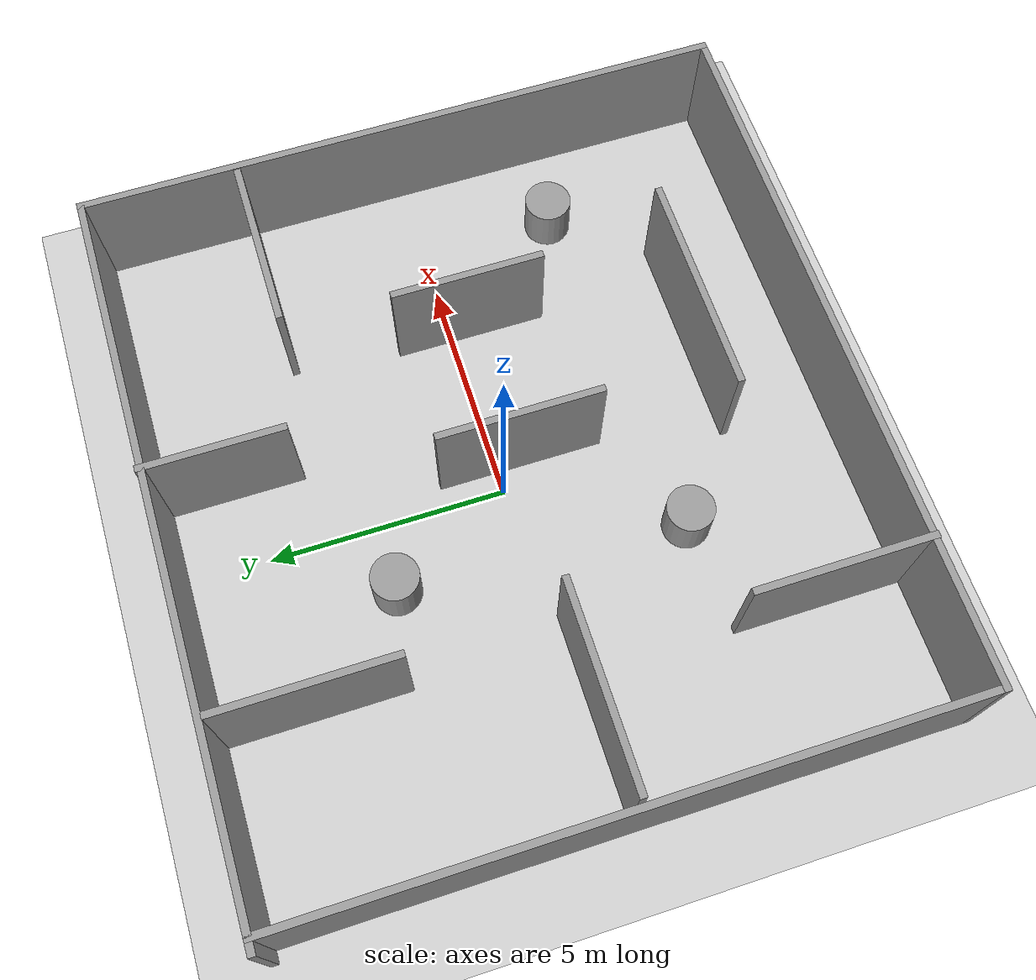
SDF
<sdf version="1.7">
 <world name="default">
  <light name="sun" type="directional">
   <pose>0 0 10 0 -0 0</pose>
   <diffuse>0.8 0.8 0.8 1</diffuse>
   <specular>0.2 0.2 0.2 1</specular>
   <attenuation>
    <range>1000</range>
    <constant>0.9</constant>
    <linear>0.01</linear>
    <quadratic>0.001</quadratic>
   </attenuation>
   <direction>-0.5 0.1 -0.9</direction>
   <spot><inner_angle>0</inner_angle><outer_angle>0</outer_angle><falloff>0</falloff></spot>
  </light>
  <model name="ground_plane">
   <static>1</static>
   <link name="link">
    <collision name="collision">
     <geometry><plane><normal>0 0 1</normal><size>100 100</size></plane></geometry>
     <surface>
      <contact><collide_bitmask>65535</collide_bitmask></contact>
      <friction><ode><mu>100</mu><mu2>50</mu2></ode></friction>
     </surface>
    </collision>
    <visual name="visual">
     <cast_shadows>0</cast_shadows>
     <geometry><plane><normal>0 0 1</normal><size>100 100</size></plane></geometry>
     <material>
      <script><uri>file://media/materials/scripts/gazebo.material</uri><name>Gazebo/Grey</name></script>
     </material>
    </visual>
   </link>
  </model>
  <gravity>0 0 -9.8</gravity>
  <magnetic_field>6e-06 2.3e-05 -4.2e-05</magnetic_field>
  <atmosphere type="adiabatic"/>
  <physics type="ode">
   <max_step_size>0.001</max_step_size>
   <real_time_factor>1</real_time_factor>
   <real_time_update_rate>1000</real_time_update_rate>
  </physics>
  <scene><ambient>0.4 0.4 0.4 1</ambient><background>0.7 0.7 0.7 1</background><shadows>1</shadows></scene>
  <spherical_coordinates>
   <surface_model>EARTH_WGS84</surface_model>
   <latitude_deg>0</latitude_deg>
   <longitude_deg>0</longitude_deg>
   <elevation>0</elevation>
   <heading_deg>0</heading_deg>
  </spherical_coordinates>
  <model name="maze_house">
   <pose>0.16752 -0.157789 0 0 -0 0</pose>
   <link name="Wall_23">
    <collision name="Wall_23_Collision">
     <geometry><box><size>3.75 0.15 2.5</size></box></geometry>
     <pose>0 0 1.25 0 -0 0</pose>
    </collision>
    <visual name="Wall_23_Visual">
     <pose>0 0 1.25 0 -0 0</pose>
     <geometry><box><size>3.75 0.15 2.5</size></box></geometry>
     <material>
      <script><uri>file://media/materials/scripts/gazebo.material</uri><name>Gazebo/Grey</name></script>
      <ambient>1 1 1 1</ambient>
     </material>
     <meta><layer>0</layer></meta>
    </visual>
    <pose>-4.39045 -5.15967 0 0 -0 1.5708</pose>
   </link>
   <link name="Wall_27">
    <collision name="Wall_27_Collision">
     <geometry><box><size>4.75 0.15 2.5</size></box></geometry>
     <pose>0 0 1.25 0 -0 0</pose>
    </collision>
    <visual name="Wall_27_Visual">
     <pose>0 0 1.25 0 -0 0</pose>
     <geometry><box><size>4.75 0.15 2.5</size></box></geometry>
     <material>
      <script><uri>file://media/materials/scripts/gazebo.material</uri><name>Gazebo/Grey</name></script>
      <ambient>1 1 1 1</ambient>
     </material>
     <meta><layer>0</layer></meta>
    </visual>
    <pose>2.07306 -4.69287 0 0 -0 0</pose>
   </link>
   <link name="Wall_29">
    <collision name="Wall_29_Collision">
     <geometry><box><size>3.25 0.15 2.5</size></box></geometry>
     <pose>0 0 1.25 0 -0 0</pose>
    </collision>
    <visual name="Wall_29_Visual">
     <pose>0 0 1.25 0 -0 0</pose>
     <geometry><box><size>3.25 0.15 2.5</size></box></geometry>
     <material>
      <script><uri>file://media/materials/scripts/gazebo.material</uri><name>Gazebo/Grey</name></script>
      <ambient>1 1 1 1</ambient>
     </material>
     <meta><layer>0</layer></meta>
    </visual>
    <pose>3.659 -0.275171 0 0 -0 -1.5708</pose>
   </link>
   <link name="Wall_35">
    <collision name="Wall_35_Collision">
     <geometry><box><size>3.5 0.15 2.5</size></box></geometry>
     <pose>0 0 1.25 0 -0 0</pose>
    </collision>
    <visual name="Wall_35_Visual">
     <pose>0 0 1.25 0 -0 0</pose>
     <geometry><box><size>3.5 0.15 2.5</size></box></geometry>
     <material>
      <script><uri>file://media/materials/scripts/gazebo.material</uri><name>Gazebo/Grey</name></script>
      <ambient>1 1 1 1</ambient>
     </material>
     <meta><layer>0</layer></meta>
    </visual>
    <pose>0.374451 -0.35391 0 0 -0 -1.5708</pose>
   </link>
   <link name="Wall_37">
    <collision name="Wall_37_Collision">
     <geometry><box><size>4.25 0.15 2.5</size></box></geometry>
     <pose>0 0 1.25 0 -0 0</pose>
    </collision>
    <visual name="Wall_37_Visual">
     <pose>0 0 1.25 0 -0 0</pose>
     <geometry><box><size>4.25 0.15 2.5</size></box></geometry>
     <material>
      <script><uri>file://media/materials/scripts/gazebo.material</uri><name>Gazebo/Grey</name></script>
      <ambient>1 1 1 1</ambient>
     </material>
     <meta><layer>0</layer></meta>
    </visual>
    <pose>-5.16239 -0.113008 0 0 -0 0</pose>
   </link>
   <link name="Wall_4">
    <collision name="Wall_4_Collision">
     <geometry><box><size>15.5 0.15 2.5</size></box></geometry>
     <pose>0 0 1.25 0 -0 0</pose>
    </collision>
    <visual name="Wall_4_Visual">
     <pose>0 0 1.25 0 -0 0</pose>
     <geometry><box><size>15.5 0.15 2.5</size></box></geometry>
     <material>
      <script><uri>file://media/materials/scripts/gazebo.material</uri><name>Gazebo/Grey</name></script>
      <ambient>1 1 1 1</ambient>
     </material>
     <meta><layer>0</layer></meta>
    </visual>
    <pose>-0 6.9187 0 0 -0 0</pose>
   </link>
   <link name="Wall_41">
    <collision name="Wall_41_Collision">
     <geometry><box><size>3.75 0.15 2.5</size></box></geometry>
     <pose>0 0 1.25 0 -0 0</pose>
    </collision>
    <visual name="Wall_41_Visual">
     <pose>0 0 1.25 0 -0 0</pose>
     <geometry><box><size>3.75 0.15 2.5</size></box></geometry>
     <material>
      <script><uri>file://media/materials/scripts/gazebo.material</uri><name>Gazebo/Grey</name></script>
      <ambient>1 1 1 1</ambient>
     </material>
     <meta><layer>0</layer></meta>
    </visual>
    <pose>-3.56521 4.98207 0 0 -0 -1.5708</pose>
   </link>
   <link name="Wall_43">
    <collision name="Wall_43_Collision">
     <geometry><box><size>3 0.15 2.5</size></box></geometry>
     <pose>0 0 1.25 0 -0 0</pose>
    </collision>
    <visual name="Wall_43_Visual">
     <pose>0 0 1.25 0 -0 0</pose>
     <geometry><box><size>3 0.15 2.5</size></box></geometry>
     <material>
      <script><uri>file://media/materials/scripts/gazebo.material</uri><name>Gazebo/Grey</name></script>
      <ambient>1 1 1 1</ambient>
     </material>
     <meta><layer>0</layer></meta>
    </visual>
    <pose>1.46052 5.53467 0 0 -0 -1.5708</pose>
   </link>
   <link name="Wall_45">
    <collision name="Wall_45_Collision">
     <geometry><box><size>3.75 0.15 2.5</size></box></geometry>
     <pose>0 0 1.25 0 -0 0</pose>
    </collision>
    <visual name="Wall_45_Visual">
     <pose>0 0 1.25 0 -0 0</pose>
     <geometry><box><size>3.75 0.15 2.5</size></box></geometry>
     <material>
      <script><uri>file://media/materials/scripts/gazebo.material</uri><name>Gazebo/Grey</name></script>
      <ambient>1 1 1 1</ambient>
     </material>
     <meta><layer>0</layer></meta>
    </visual>
    <pose>5.70774 3.60804 0 0 -0 0</pose>
   </link>
   <link name="Wall_5">
    <collision name="Wall_5_Collision">
     <geometry><box><size>14 0.15 2.5</size></box></geometry>
     <pose>0 0 1.25 0 -0 0</pose>
    </collision>
    <visual name="Wall_5_Visual">
     <pose>0 0 1.25 0 -0 0</pose>
     <geometry><box><size>14 0.15 2.5</size></box></geometry>
     <material>
      <script><uri>file://media/materials/scripts/gazebo.material</uri><name>Gazebo/Grey</name></script>
      <ambient>1 1 1 1</ambient>
     </material>
     <meta><layer>0</layer></meta>
    </visual>
    <pose>7.675 -0.006303 0 0 -0 -1.5708</pose>
   </link>
   <link name="Wall_6">
    <collision name="Wall_6_Collision">
     <geometry><box><size>15.25 0.15 2.5</size></box></geometry>
     <pose>0 0 1.25 0 -0 0</pose>
    </collision>
    <visual name="Wall_6_Visual">
     <pose>0 0 1.25 0 -0 0</pose>
     <geometry><box><size>15.25 0.15 2.5</size></box></geometry>
     <material>
      <script><uri>file://media/materials/scripts/gazebo.material</uri><name>Gazebo/Grey</name></script>
      <ambient>1 1 1 1</ambient>
     </material>
     <meta><layer>0</layer></meta>
    </visual>
    <pose>0.125 -6.9313 0 0 -0 3.14159</pose>
   </link>
   <link name="Wall_7">
    <collision name="Wall_7_Collision">
     <geometry><box><size>14 0.15 2.5</size></box></geometry>
     <pose>0 0 1.25 0 -0 0</pose>
    </collision>
    <visual name="Wall_7_Visual">
     <pose>0 0 1.25 0 -0 0</pose>
     <geometry><box><size>14 0.15 2.5</size></box></geometry>
     <material>
      <script><uri>file://media/materials/scripts/gazebo.material</uri><name>Gazebo/Grey</name></script>
      <ambient>1 1 1 1</ambient>
     </material>
     <meta><layer>0</layer></meta>
    </visual>
    <pose>-7.425 -0.006303 0 0 -0 1.5708</pose>
   </link>
   <static>1</static>
  </model>
  <model name="unit_cylinder">
   <pose>-1.83542 -3.33857 0.499992 -3e-06 4e-06 0</pose>
   <link name="link">
    <inertial>
     <mass>1</mass>
     <inertia><ixx>0.145833</ixx><ixy>0</ixy><ixz>0</ixz><iyy>0.145833</iyy><iyz>0</iyz><izz>0.125</izz></inertia>
    </inertial>
    <collision name="collision">
     <geometry><cylinder><radius>0.5</radius><length>1</length></cylinder></geometry>
    </collision>
    <visual name="visual">
     <geometry><cylinder><radius>0.5</radius><length>1</length></cylinder></geometry>
     <material>
      <script><name>Gazebo/Grey</name><uri>file://media/materials/scripts/gazebo.material</uri></script>
     </material>
    </visual>
   </link>
  </model>
  <model name="unit_cylinder_0">
   <pose>-1.42764 2.70376 0.499997 3e-06 -4e-06 0</pose>
   <link name="link">
    <inertial>
     <mass>1</mass>
     <inertia><ixx>0.145833</ixx><ixy>0</ixy><ixz>0</ixz><iyy>0.145833</iyy><iyz>0</iyz><izz>0.125</izz></inertia>
    </inertial>
    <collision name="collision">
     <geometry><cylinder><radius>0.5</radius><length>1</length></cylinder></geometry>
    </collision>
    <visual name="visual">
     <geometry><cylinder><radius>0.5</radius><length>1</length></cylinder></geometry>
     <material>
      <script><name>Gazebo/Grey</name><uri>file://media/materials/scripts/gazebo.material</uri></script>
     </material>
    </visual>
   </link>
  </model>
  <model name="unit_cylinder_1">
   <pose>5.97974 -2.91173 0.499992 -3e-06 -4e-06 -0</pose>
   <link name="link">
    <inertial>
     <mass>1</mass>
     <inertia><ixx>0.145833</ixx><ixy>0</ixy><ixz>0</ixz><iyy>0.145833</iyy><iyz>0</iyz><izz>0.125</izz></inertia>
    </inertial>
    <collision name="collision">
     <geometry><cylinder><radius>0.5</radius><length>1</length></cylinder></geometry>
    </collision>
    <visual name="visual">
     <geometry><cylinder><radius>0.5</radius><length>1</length></cylinder></geometry>
     <material>
      <script><name>Gazebo/Grey</name><uri>file://media/materials/scripts/gazebo.material</uri></script>
     </material>
    </visual>
   </link>
  </model>
 </world>
</sdf>
